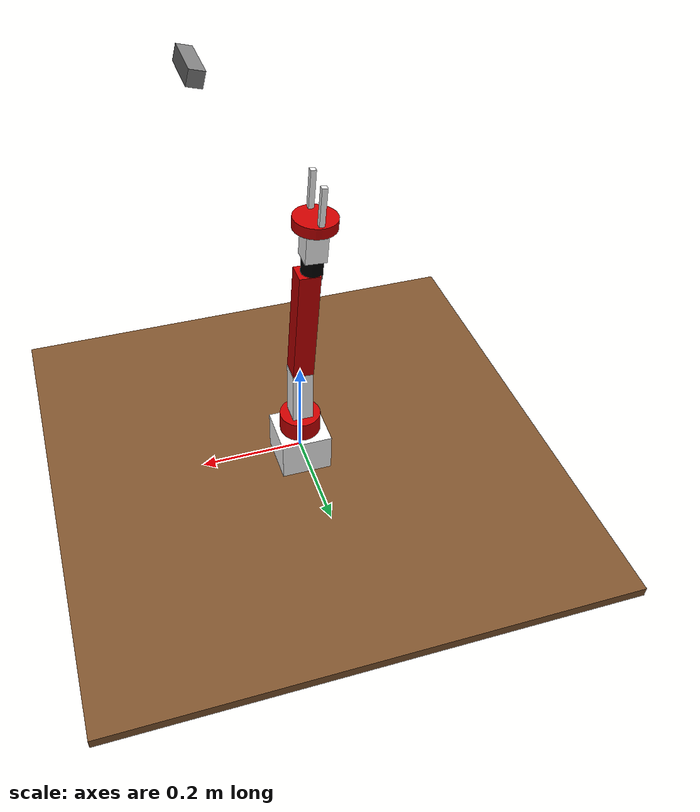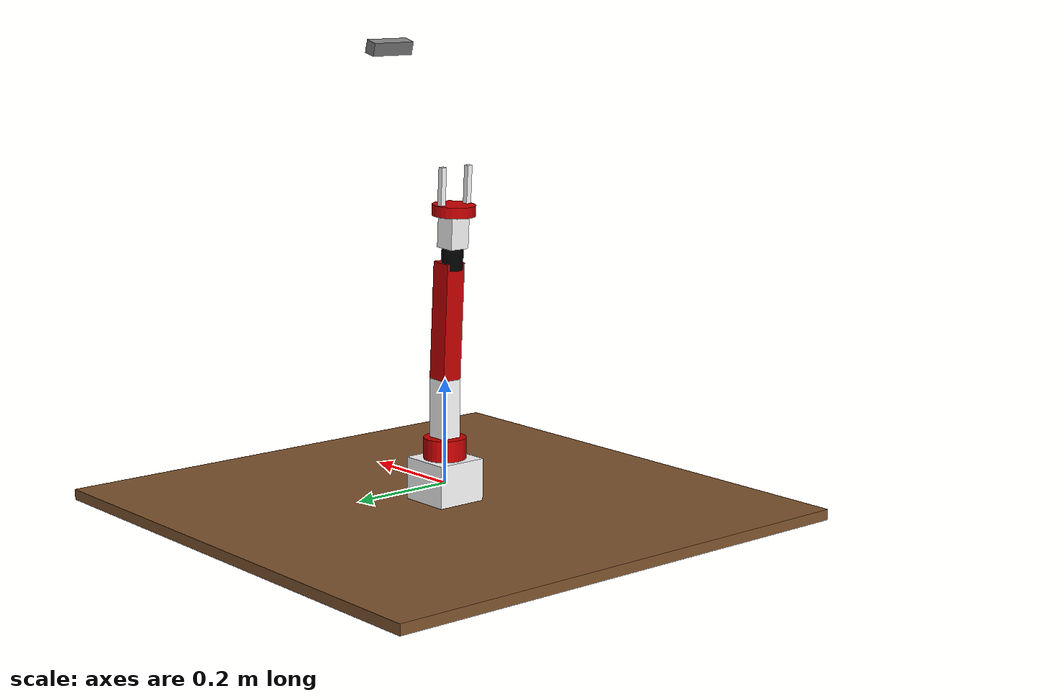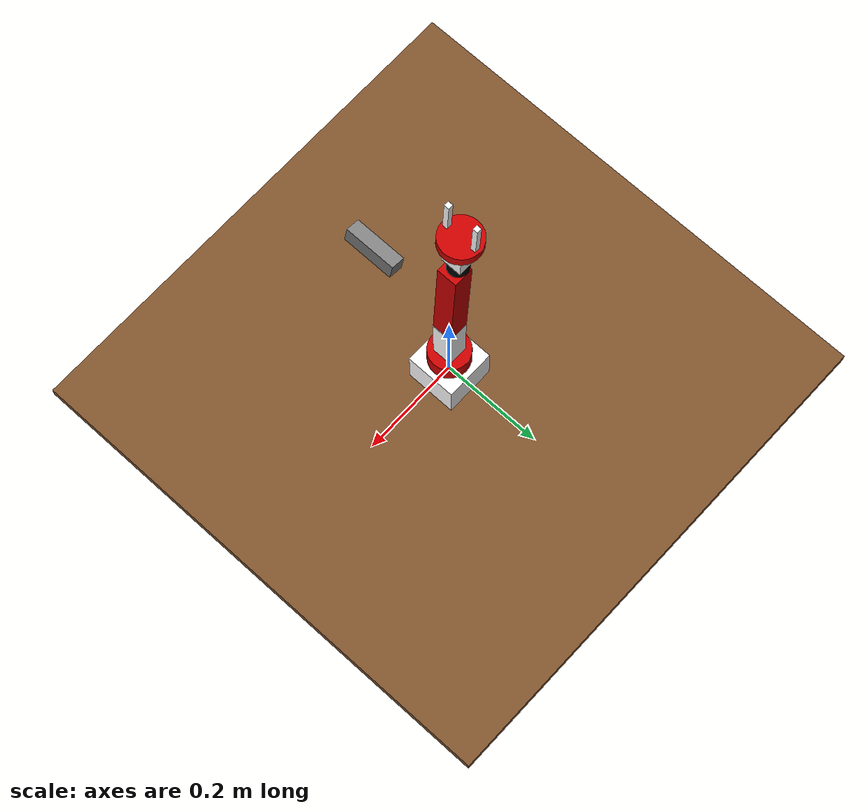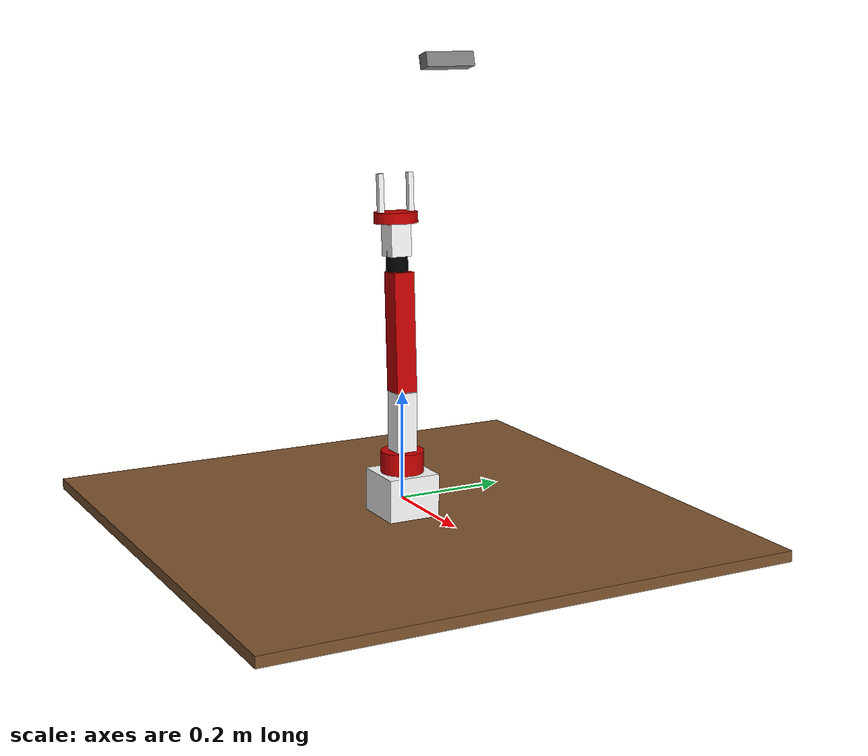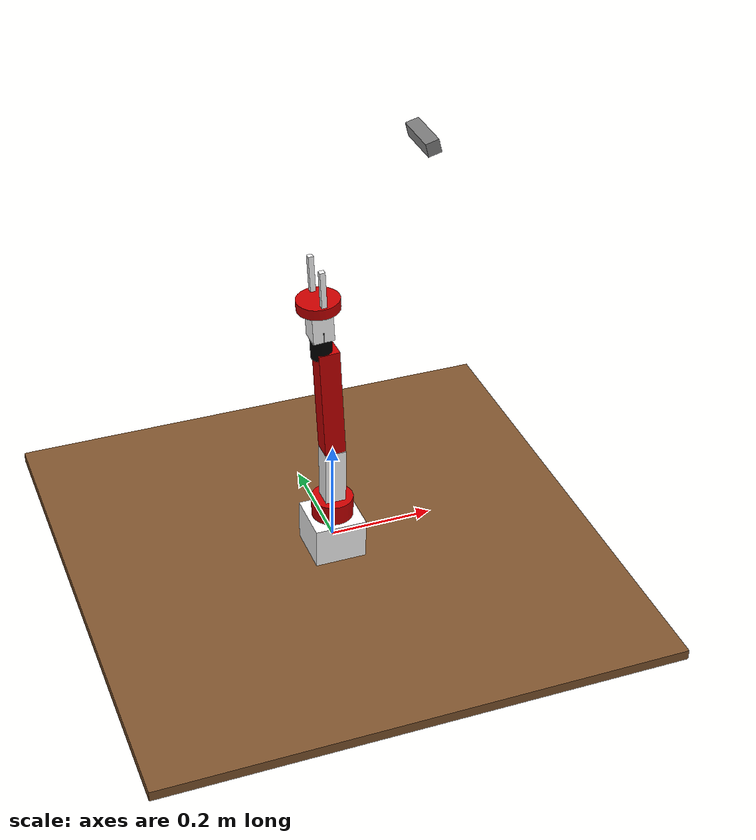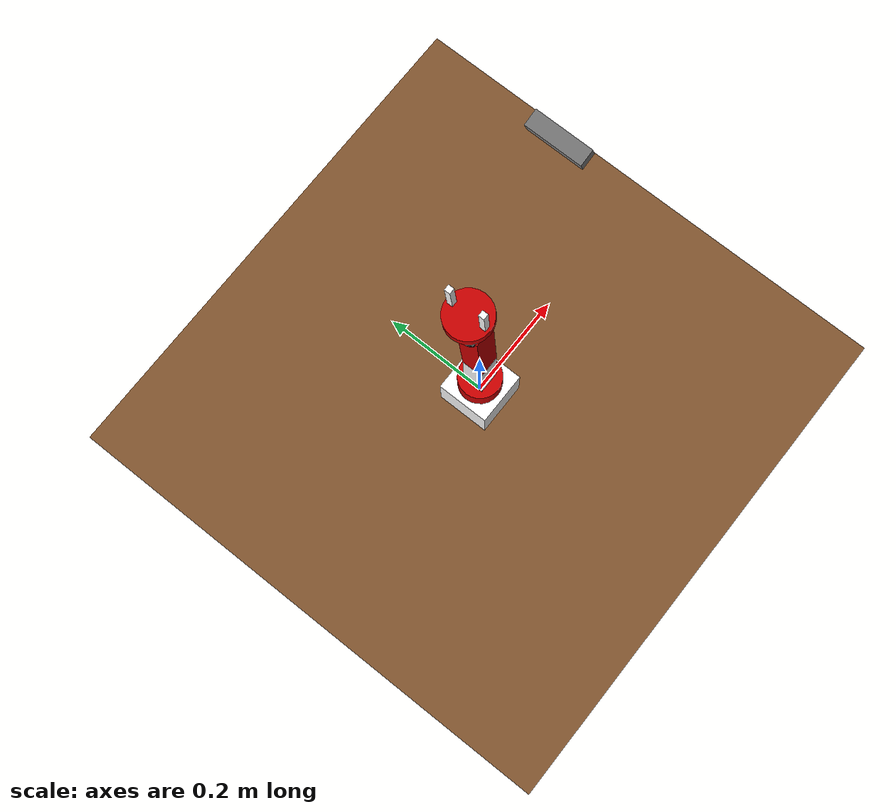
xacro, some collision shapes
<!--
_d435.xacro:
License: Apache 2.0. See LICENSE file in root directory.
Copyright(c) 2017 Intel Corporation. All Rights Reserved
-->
<?xml version="1.0"?>

<robot name="dodo_arm" xmlns:xacro="http://ros.org/wiki/xacro">

  <!-- Include materials -->

    <material name="Black">
        <color rgba="0.0 0.0 0.0 1.0"/>
    </material>

    <material name="Red">
        <color rgba="0.8 0.0 0.0 1.0"/>
    </material>

    <material name="White">
        <color rgba="1.0 1.0 1.0 1.0"/>
    </material>

  <xacro:property name="deg_to_rad" value="0.01745329251994329577"/>

  <!-- Constants -->
  <xacro:property name="M_SCALE" value="0.001 0.001 0.001"/>
  <xacro:property name="M_PI" value="3.14159"/>

  <!-- Shoulder pan link properties -->
  <xacro:property name="shoulder_pan_width" value="0.04" />
  <xacro:property name="shoulder_pan_len" value="0.08" />

  <!-- Shoulder pitch link properties -->
  <xacro:property name="shoulder_pitch_len" value="0.14" />
  <xacro:property name="shoulder_pitch_width" value="0.04" />
  <xacro:property name="shoulder_pitch_height" value="0.04" />

  <!-- Elbow roll link properties -->
  <xacro:property name="elbow_roll_width" value="0.02" />
  <xacro:property name="elbow_roll_len" value="0.06" />

  <!-- Elbow pitch link properties -->
  <xacro:property name="elbow_pitch_len" value="0.22" />
  <xacro:property name="elbow_pitch_width" value="0.04" />
  <xacro:property name="elbow_pitch_height" value="0.04" />

  <!-- Wrist roll link properties -->
  <xacro:property name="wrist_roll_width" value="0.02" />
  <xacro:property name="wrist_roll_len" value="0.04" />

  <!-- wrist pitch link properties -->
  <xacro:property name="wrist_pitch_len" value="0.06" />
  <xacro:property name="wrist_pitch_width" value="0.04" />
  <xacro:property name="wrist_pitch_height" value="0.04" />

  <!-- Gripper roll link properties -->
  <xacro:property name="gripper_roll_width" value="0.04" />
  <xacro:property name="gripper_roll_len" value="0.02" />

  <!-- Left gripper -->
  <xacro:property name="left_gripper_len" value="0.08" />
  <xacro:property name="left_gripper_width" value="0.01" />
  <xacro:property name="left_gripper_height" value="0.01" />

  <!-- Right gripper -->
  <xacro:property name="right_gripper_len" value="0.08" />
  <xacro:property name="right_gripper_width" value="0.01" />
  <xacro:property name="right_gripper_height" value="0.01" />

  <!-- Right gripper -->
  <xacro:property name="grasp_frame_len" value="0.02" />
  <xacro:property name="grasp_frame_width" value="0.02" />
  <xacro:property name="grasp_frame_height" value="0.02" />

   <xacro:macro name="inertial_matrix" params="mass">
      <inertial>
      	<mass value="${mass}" />
        <inertia ixx="1.0" ixy="0.0" ixz="0.0" iyy="0.5" iyz="0.0" izz="1.0" />
      </inertial>
   </xacro:macro>

   <xacro:macro name="transmission_block" params="joint_name">
	  <transmission name="tran1">
	    <type>transmission_interface/SimpleTransmission</type>
	    <joint name="${joint_name}">
	      <hardwareInterface>hardware_interface/EffortJointInterface</hardwareInterface>
	    </joint>
	    <actuator name="motor1">
	      <hardwareInterface>hardware_interface/EffortJointInterface</hardwareInterface>
	      <mechanicalReduction>1</mechanicalReduction>
	    </actuator>
	  </transmission>
   </xacro:macro>

<!-- BOTTOM FIXED LINK
This link is the base of the arm in which arm is placed

-->

  <joint name="bottom_joint" type="fixed">
    <origin xyz="0 0 0" rpy="0 0 0" />
    <parent link="base_link"/>
    <child link="bottom_link"/>
  </joint>

  <link name="bottom_link">

    <visual>
      <origin xyz=" 0 0 -0.04"  rpy="0 0 0"/>
      <geometry>

	       <box size="1 1 0.02" />

      </geometry>
      <material name="Brown" />
    </visual>

    <collision>
      <origin xyz=" 0 0 -0.04"  rpy="0 0 0"/>
      <geometry>
	       <box size="1 1 0.02" />
      </geometry>
      </collision>>

  </link>

  <gazebo reference="bottom_link">
    <material>Gazebo/White</material>
  </gazebo>

  <!-- BASE LINK -->
  <link name="base_link">

    <visual>
      <origin xyz="0 0 0" rpy="${M_PI/2} 0 0" /> <!-- rotate PI/2 -->
      <geometry>

	       <box size="0.1 0.1 0.1" />

      </geometry>
      <material name="White" />
    </visual>

    <collision>
      <origin xyz="0 0 0" rpy="${M_PI/2} 0 0" /> <!-- rotate PI/2 -->
      <geometry>

	       <box size="0.1 0.1 0.1" />

      </geometry>
      </collision>>
	<xacro:inertial_matrix mass="1"/>

  </link>

  <gazebo reference="base_link">
    <material>Gazebo/White</material>
  </gazebo>

  <joint name="shoulder_pan_joint" type="revolute">
    <parent link="base_link"/>
    <child link="shoulder_pan_link"/>
    <origin xyz="0 0 0.05" rpy="0 ${M_PI/2} ${M_PI*0}" />
    <axis xyz="-1 0 0" />
    <limit effort="300" velocity="1" lower="-2.61799387799" upper="1.98394848567"/>
    <dynamics damping="50" friction="1"/>
  </joint>

  <!-- SHOULDER PAN LINK -->
  <link name="shoulder_pan_link" >

    <visual>
      <origin xyz="0 0 0" rpy="0 ${M_PI/2} 0" />
      <geometry>

            <cylinder radius="${shoulder_pan_width}" length="${shoulder_pan_len}"/>

      </geometry>
      <material name="Red" />
    </visual>

    <collision>
      <origin xyz="0 0 0" rpy="0 ${M_PI/2} 0" />
      <geometry>
            <cylinder radius="${shoulder_pan_width}" length="${shoulder_pan_len}"/>
      </geometry>
    </collision>
	<xacro:inertial_matrix mass="1"/>
  </link>

  <gazebo reference="shoulder_pan_link">
    <material>Gazebo/Red</material>
  </gazebo>

  <joint name="shoulder_pitch_joint" type="revolute">
    <parent link="shoulder_pan_link"/>
    <child link="shoulder_pitch_link"/>
    <origin xyz="-0.041 0.0021 0.0" rpy="-${M_PI/2} 0 ${M_PI/2}" />
    <axis xyz="1 0 0" />
    <limit effort="300" velocity="1" lower="-1.19962513147" upper="1.89994105047" />
    <dynamics damping="50" friction="1"/>
  </joint>

  <!-- SHOULDER PITCH LINK -->
  <link name="shoulder_pitch_link" >

    <visual>
      <origin xyz="-0.002 0 0.04" rpy="0 ${M_PI/2} 0" />
      <geometry>

           <box size="${shoulder_pitch_len} ${shoulder_pitch_width} ${shoulder_pitch_height}" />

      </geometry>
      <material name="White" />
    </visual>

    <collision>
      <origin xyz="-0.002 0 0.04" rpy="0 ${M_PI/2} 0" />
      <geometry>
           <box size="${shoulder_pitch_len} ${shoulder_pitch_width} ${shoulder_pitch_height}" />
      </geometry>
    </collision>
	<xacro:inertial_matrix mass="1"/>
  </link>

  <gazebo reference="shoulder_pitch_link">
    <material>Gazebo/White</material>
  </gazebo>

  <joint name="elbow_pitch_joint" type="revolute">
    <parent link="shoulder_pitch_link"/>
    <child link="elbow_pitch_link"/>
    <origin xyz="-0.002 0 0.10" rpy="0.055 ${M_PI} 0" />
    <axis xyz="1 0 0" />
    <limit effort="300" velocity="1" lower="-1.5953400194" upper="1.93281579274" />
    <dynamics damping="50" friction="1"/>
  </joint>

  <!-- ELBOW PITCH LINK -->
  <link name="elbow_pitch_link" >

    <visual>
      <origin xyz="0 0 -0.12" rpy="0 ${M_PI/2} 0" />
      <geometry>

       <box size="${elbow_pitch_len} ${elbow_pitch_width} ${elbow_pitch_height}" />

      </geometry>
      <material name="Red" />
    </visual>

    <collision>
      <origin xyz="0 0 -0.12" rpy="0 ${M_PI/2} 0" />
      <geometry>
       <box size="${elbow_pitch_len} ${elbow_pitch_width} ${elbow_pitch_height}" />
      </geometry>
    </collision>
	<xacro:inertial_matrix mass="1"/>
  </link>

  <gazebo reference="elbow_pitch_link">
    <material>Gazebo/Red</material>
  </gazebo>

  <joint name="wrist_roll_joint" type="revolute">
    <parent link="elbow_pitch_link"/>
    <child link="wrist_roll_link"/>
    <origin xyz="0.0 0.0081 -.248" rpy="0 ${M_PI/2} ${M_PI}" />
    <axis xyz="1 0 0" />
    <limit effort="300" velocity="1" lower="-2.61799387799" upper="2.6128806087" />
    <dynamics damping="50" friction="1"/>
  </joint>

  <!-- WRIST ROLL LINK -->
  <link name="wrist_roll_link" >
    <visual>
      <origin xyz="0 0 0" rpy="0 ${M_PI/2} 0" />
      <geometry>

           <cylinder radius="${elbow_roll_width}" length="${elbow_roll_len}"/>

      </geometry>
      <material name="Black" />
    </visual>

    <collision>
      <origin xyz="0 0 0" rpy="0 ${M_PI/2} 0" />
      <geometry>
           <cylinder radius="${elbow_roll_width}" length="${elbow_roll_len}"/>
      </geometry>
    </collision>
	<xacro:inertial_matrix mass="1"/>

  </link>

  <gazebo reference="wrist_roll_link">
    <material>Gazebo/Black</material>
  </gazebo>

  <joint name="wrist_pitch_joint" type="revolute">
    <parent link="wrist_roll_link"/>
    <child link="wrist_pitch_link"/>
    <origin xyz="0.0 0.0 0.0001" rpy="0 ${M_PI/2} 0" />
    <axis xyz="1 0 0" />
    <limit effort="300" velocity="1" lower="-1.5953400194" upper="1.98394848567" />
    <dynamics damping="50" friction="1"/>
  </joint>

  <!-- WRIST PITCH LINK -->
  <link name="wrist_pitch_link">

    <visual>
      <origin xyz="0 0 0.04" rpy="0 ${M_PI/2} 0" />
      <geometry>

           <box size="${wrist_pitch_len} ${wrist_pitch_width} ${wrist_pitch_height}" />

      </geometry>
      <material name="White" />
    </visual>

    <collision>
      <origin xyz="0 0 0.04 " rpy="0 ${M_PI/2} 0" />
      <geometry>
          <box size="${wrist_pitch_len} ${wrist_pitch_width} ${wrist_pitch_height}" />
      </geometry>
    </collision>
	<xacro:inertial_matrix mass="1"/>

  </link>

  <gazebo reference="wrist_pitch_link">
    <material>Gazebo/White</material>
  </gazebo>

  <joint name="gripper_roll_joint" type="revolute">
    <parent link="wrist_pitch_link"/>
    <child link="gripper_roll_link"/>
    <origin xyz="0 0 0.080" rpy="${1.5*M_PI} -${.5*M_PI} 0" />
    <axis xyz="1 0 0" />
		<limit effort="300" velocity="1" lower="-3.14" upper="3.14" />
    <dynamics damping="50" friction="1"/>
  </joint>

  <!-- GRIPPER ROLL LINK -->
  <link name="gripper_roll_link">

    <visual>
      <origin xyz="0 0 0" rpy="0 ${M_PI/2} 0" />
      <geometry>

            <cylinder radius="${gripper_roll_width}" length="${gripper_roll_len}"/>

      </geometry>
      <material name="Red" />
    </visual>

    <collision>
      <origin xyz="0 0 0" rpy="0 ${M_PI/2} 0" />
      <geometry>
            <cylinder radius="${gripper_roll_width}" length="${gripper_roll_len}"/>
      </geometry>
    </collision>
	<xacro:inertial_matrix mass="1"/>

  </link>

  <gazebo reference="gripper_roll_link">
    <material>Gazebo/Red</material>
  </gazebo>

    <joint name="finger_joint1" type="prismatic">
    <parent link="gripper_roll_link"/>
    <child link="gripper_finger_link1"/>
    <origin xyz="0.0 0 0" />
    <axis xyz="0 1 0" />
    <limit effort="1" lower="0.03" upper="0" velocity="1.0"/>
    <safety_controller k_position="20"
                         k_velocity="20"
                         soft_lower_limit="${-0.15 }"
                         soft_upper_limit="${ 0.0 }"/>

    <dynamics damping="50" friction="1"/>
  </joint>

  <!-- LEFT GRIPPER AFT LINK -->
  <link name="gripper_finger_link1">

     <visual>
      <origin xyz="0.04 -0.03 0"/>
      <geometry>

           <box size="${left_gripper_len} ${left_gripper_width} ${left_gripper_height}" />

      </geometry>
      <material name="White" />
    </visual>
	<xacro:inertial_matrix mass="1"/>
  </link>

  <gazebo reference="l_gripper_aft_link">
    <material>Gazebo/White</material>
  </gazebo>

<!-- Joint between Wrist roll and finger 2 -->

  <joint name="finger_joint2" type="prismatic">
    <parent link="gripper_roll_link"/>
    <child link="gripper_finger_link2"/>
    <origin xyz="0.0 0 0" />
    <axis xyz="0 1 0" />
    <limit effort="1" lower="-0.03" upper="0" velocity="1.0"/>

    <safety_controller k_position="20"
                         k_velocity="20"
                         soft_lower_limit="${-0.15 }"
                         soft_upper_limit="${ 0.0 }"/>

    <dynamics damping="50" friction="1"/>
  </joint>

  <!-- RIGHT GRIPPER AFT LINK -->

  <link name="gripper_finger_link2">
    <visual>
      <origin xyz="0.04 0.03 0"/>
      <geometry>
      	<box size="${right_gripper_len} ${right_gripper_width} ${right_gripper_height}" />
      </geometry>
      <material name="White" />
    </visual>
	<xacro:inertial_matrix mass="1"/>
  </link>

  <gazebo reference="r_gripper_aft_link">
    <material>Gazebo/White</material>
  </gazebo>

    <!-- Grasping frame -->
    <link name="grasping_frame">

      <inertial>
        <origin xyz="0 0 0" rpy="0 0 0"/>
        <mass value="0.0001"/>
        <cuboid_inertia mass="0.0001" x="0.001" y="0.001" z="0.001"/>
        <inertia  ixx="1.0" ixy="0.0"  ixz="0.0"  iyy="100.0"  iyz="0.0"  izz="1.0" />

      </inertial>

    </link>

    <joint name="grasping_frame_joint" type="fixed">
      <parent link="gripper_roll_link"/>
      <child link="grasping_frame"/>
      <origin xyz="0.08 0 0" rpy="0 0 0"/>
    </joint>

  <!-- Depth Camera -->
  <xacro:include filename="$(find dodo_arm_pkg)/urdf/_d435.xacro"/>

  <!-- Transmissions for ROS Control -->

   <xacro:transmission_block joint_name="shoulder_pan_joint"/>
   <xacro:transmission_block joint_name="shoulder_pitch_joint"/>
   <xacro:transmission_block joint_name="elbow_pitch_joint"/>
   <xacro:transmission_block joint_name="wrist_roll_joint"/>
   <xacro:transmission_block joint_name="wrist_pitch_joint"/>
   <xacro:transmission_block joint_name="gripper_roll_joint"/>
   <xacro:transmission_block joint_name="finger_joint1"/>
   <xacro:transmission_block joint_name="finger_joint2"/>

  <!-- Define RGB-D sensor -->
  <xacro:sensor_d435 name="sensor_d435" topics_ns="sensor_d435" parent="base_link">
    <origin xyz="0.15 0.0 0.8" rpy="0 ${75.0 * deg_to_rad} 0"/>
  </xacro:sensor_d435>

 <!-- ros_control plugin -->
  <gazebo>
    <plugin name="gazebo_ros_control" filename="libgazebo_ros_control.so">
      <robotNamespace>/dodo_arm</robotNamespace>
    </plugin>
  </gazebo>

</robot>

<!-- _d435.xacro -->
<robot name="sensor_d435" xmlns:xacro="http://ros.org/wiki/xacro">
  <!--File includes-->
  <xacro:include filename="$(find dodo_arm_pkg)/urdf/_d435.gazebo.xacro"/>

  <xacro:macro name="sensor_d435" params="name:=camera topics_ns:=camera parent *origin">
    <xacro:property name="M_PI" value="3.1415926535897931" />

    <!-- The following values are approximate, and the camera node
     publishing TF values with actual calibrated camera extrinsic values -->
    <xacro:property name="d435_cam_depth_to_left_ir_offset" value="0.0"/>
    <xacro:property name="d435_cam_depth_to_right_ir_offset" value="-0.050"/>
    <xacro:property name="d435_cam_depth_to_color_offset" value="0.015"/>

    <!-- The following values model the aluminum peripherial case for the
  	D435 camera, with the camera joint represented by the actual
  	peripherial camera tripod mount -->
    <xacro:property name="d435_cam_width" value="0.090"/>
    <xacro:property name="d435_cam_height" value="0.025"/>
    <xacro:property name="d435_cam_depth" value="0.02505"/>
    <xacro:property name="d435_cam_mount_from_center_offset" value="0.0149"/>

    <!-- The following offset is relative the the physical D435 camera peripherial
  	camera tripod mount -->
    <xacro:property name="d435_cam_depth_px" value="${d435_cam_mount_from_center_offset}"/>
    <xacro:property name="d435_cam_depth_py" value="0.0175"/>
    <xacro:property name="d435_cam_depth_pz" value="${d435_cam_height/2}"/>

    <material name="${name}_aluminum">
	  <color rgba="0.5 0.5 0.5 1"/>
    </material>

    <!-- camera body, with origin at bottom screw mount -->
    <joint name="${name}_joint" type="fixed">
      <xacro:insert_block name="origin" />
      <parent link="${parent}"/>
      <child link="${name}_bottom_screw_frame" />
    </joint>
    <link name="${name}_bottom_screw_frame"/>

    <joint name="${name}_link_joint" type="fixed">
      <origin xyz="0 ${d435_cam_depth_py} ${d435_cam_depth_pz}" rpy="0 0 0"/>
      <parent link="${name}_bottom_screw_frame"/>
      <child link="${name}_link" />
    </joint>

    <link name="${name}_link">
      <visual>
      <origin xyz="${d435_cam_mount_from_center_offset} ${-d435_cam_depth_py} 0" rpy="${M_PI/2} 0 ${M_PI/2}"/>
        <geometry>
          <mesh filename="package://dodo_arm_pkg/meshes/d435.dae" />
        </geometry>
        <material name="${name}_aluminum"/>
      </visual>
      <collision>
        <origin xyz="0 ${-d435_cam_depth_py} 0" rpy="0 0 0"/>
        <geometry>
        <box size="${d435_cam_depth} ${d435_cam_width} ${d435_cam_height}"/>
        </geometry>
      </collision>
      <inertial>
        <!-- The following are not reliable values, and should not be used for modeling -->
        <mass value="0.564" />
        <origin xyz="0 0 1.26" />
        <inertia ixx="0.003881243" ixy="0.0" ixz="0.0" iyy="0.000498940" iyz="0.0" izz="0.003879257" />
      </inertial>
    </link>

    <!-- camera depth joints and links -->
    <joint name="${name}_depth_joint" type="fixed">
      <origin xyz="0 0 0" rpy="0 0 0"/>
      <parent link="${name}_link"/>
      <child link="${name}_depth_frame" />
    </joint>
    <link name="${name}_depth_frame"/>

    <joint name="${name}_depth_optical_joint" type="fixed">
      <origin xyz="0 0 0" rpy="${-M_PI/2} 0 ${-M_PI/2}" />
      <parent link="${name}_depth_frame" />
      <child link="${name}_depth_optical_frame" />
    </joint>
    <link name="${name}_depth_optical_frame"/>

    <!-- camera left IR joints and links -->
    <joint name="${name}_left_ir_joint" type="fixed">
      <origin xyz="0 ${d435_cam_depth_to_left_ir_offset} 0" rpy="0 0 0" />
      <parent link="${name}_depth_frame" />
      <child link="${name}_left_ir_frame" />
    </joint>
    <link name="${name}_left_ir_frame"/>

    <joint name="${name}_left_ir_optical_joint" type="fixed">
      <origin xyz="0 0 0" rpy="${-M_PI/2} 0 ${-M_PI/2}" />
      <parent link="${name}_left_ir_frame" />
      <child link="${name}_left_ir_optical_frame" />
    </joint>
    <link name="${name}_left_ir_optical_frame"/>

    <!-- camera right IR joints and links -->
    <joint name="${name}_right_ir_joint" type="fixed">
      <origin xyz="0 ${d435_cam_depth_to_right_ir_offset} 0" rpy="0 0 0" />
      <parent link="${name}_depth_frame" />
      <child link="${name}_right_ir_frame" />
    </joint>
    <link name="${name}_right_ir_frame"/>

    <joint name="${name}_right_ir_optical_joint" type="fixed">
      <origin xyz="0 0 0" rpy="${-M_PI/2} 0 ${-M_PI/2}" />
      <parent link="${name}_right_ir_frame" />
      <child link="${name}_right_ir_optical_frame" />
    </joint>
    <link name="${name}_right_ir_optical_frame"/>

    <!-- camera color joints and links -->
    <joint name="${name}_color_joint" type="fixed">
      <origin xyz="0 ${d435_cam_depth_to_color_offset} 0" rpy="0 0 0" />
      <parent link="${name}_depth_frame" />
      <child link="${name}_color_frame" />
    </joint>
    <link name="${name}_color_frame"/>

    <joint name="${name}_color_optical_joint" type="fixed">
      <origin xyz="0 0 0" rpy="${-M_PI/2} 0 ${-M_PI/2}" />
      <parent link="${name}_color_frame" />
      <child link="${name}_color_optical_frame" />
    </joint>
    <link name="${name}_color_optical_frame"/>

    <!-- Realsense Gazebo Plugin -->
    <xacro:gazebo_d435 camera_name="${name}" reference_link="${name}_link" topics_ns="${topics_ns}" depth_optical_frame="${name}_depth_optical_frame" color_optical_frame="${name}_color_optical_frame" infrared1_optical_frame="${name}_left_ir_optical_frame" infrared2_optical_frame="${name}_right_ir_optical_frame"/>

  </xacro:macro>
</robot>
